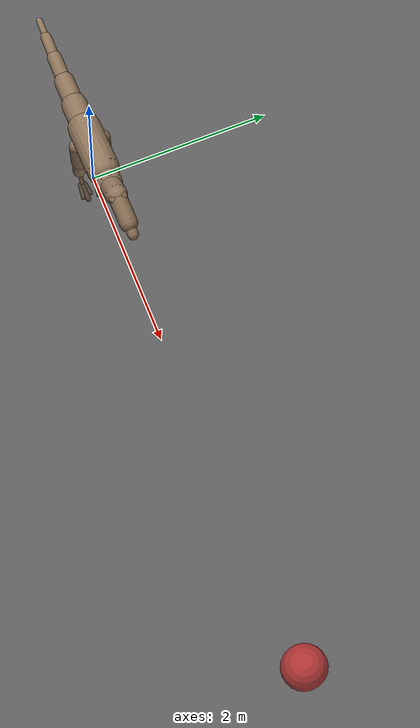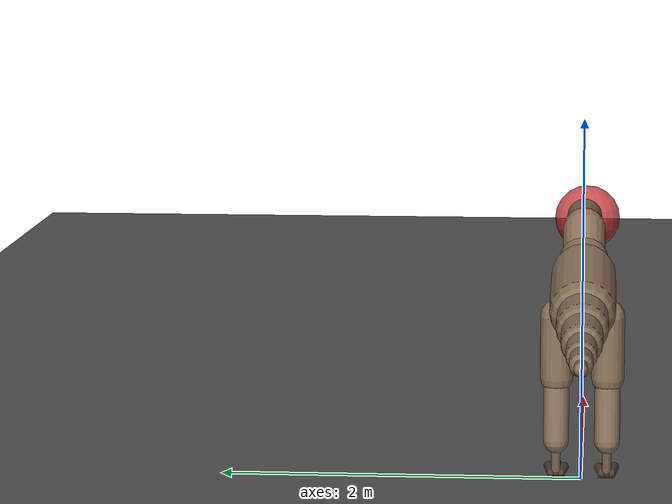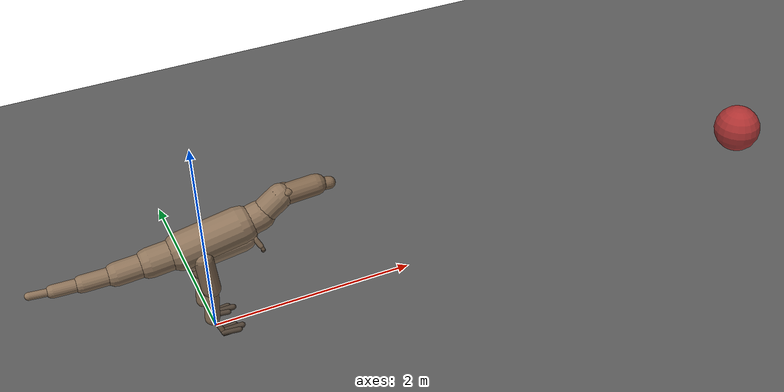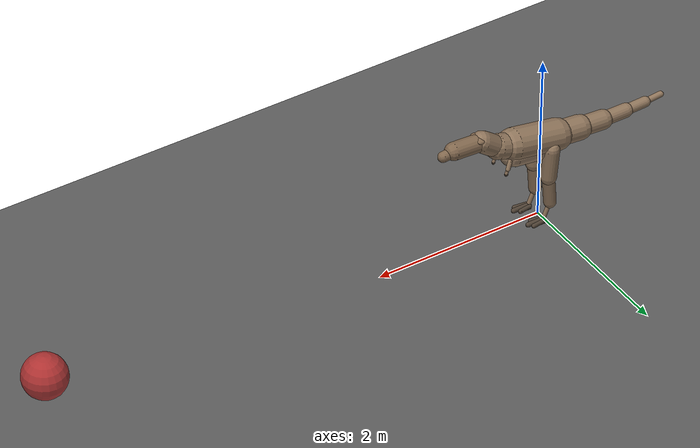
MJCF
<mujoco model="tyrannosaurus_rex">
  <compiler angle="degree" autolimits="true"/>

  <option timestep="0.002" gravity="0 0 -9.81" integrator="implicitfast">
    <flag warmstart="enable"/>
  </option>

  <default>
    <joint limited="true" damping="8.0" armature="0.05"/>
    <geom contype="1" conaffinity="1" friction="1.2 0.005 0.0001"/>
    <motor ctrllimited="true" ctrlrange="-1 1"/>

    <default class="leg_joint">
      <joint damping="45.0" armature="0.1" stiffness="40.0"/>
    </default>

    <!-- Tail joints: very stiff, acts as heavy counterbalance to skull -->
    <!-- Stiffness 80 + damping 30 prevents unactuated distal segments from sagging -->
    <default class="tail_joint">
      <joint damping="30.0" stiffness="80.0" armature="0.05" range="-12 12"/>
    </default>

  </default>

  <asset>
    <texture type="skybox" builtin="gradient" rgb1="0.6 0.8 1.0" rgb2="0.2 0.4 0.6"
             width="256" height="256"/>
    <texture name="grid" type="2d" builtin="checker" rgb1="0.4 0.4 0.4" rgb2="0.3 0.3 0.3"
             width="512" height="512"/>
    <material name="grid_mat" texture="grid" texrepeat="8 8" reflectance="0.1"/>
    <material name="body_mat" rgba="0.55 0.45 0.35 1"/>
    <material name="belly_mat" rgba="0.6 0.5 0.4 1"/>
    <material name="head_mat" rgba="0.5 0.4 0.3 1"/>
    <material name="claw_mat" rgba="0.3 0.25 0.2 1"/>
    <material name="tooth_mat" rgba="0.9 0.88 0.8 1"/>
  </asset>

  <worldbody>
    <!-- Ground plane -->
    <geom name="floor" type="plane" size="100 100 0.1" material="grid_mat"
          conaffinity="1" contype="1"/>

    <!-- Prey target (mocap body) -->
    <body name="prey" mocap="true" pos="6 0 0.5">
      <geom name="prey_geom" type="sphere" size="0.25" rgba="0.8 0.2 0.2 0.8"
            contype="2" conaffinity="2"/>
    </body>

    <!-- ==================== T-REX BODY ==================== -->

    <body name="pelvis" pos="0 0 0.9795">
      <freejoint name="root"/>

      <!-- Main torso: forward-leaning, angled ~30 deg from horizontal -->
      <!-- Pelvis region (rear of torso, widest part) -->
      <geom name="torso" type="capsule" fromto="-0.2 0 0  0.35 0 0.1" size="0.18"
            mass="20.0" material="body_mat"/>

      <!-- Ribcage (front of torso, narrowing toward neck) -->
      <geom name="ribcage" type="capsule" fromto="0.3 0 0.08  0.55 0 0.15" size="0.14"
            mass="10.0" material="body_mat"/>

      <!-- Belly (adds mass lower for stability) -->
      <geom name="belly" type="capsule" fromto="-0.1 0 -0.08  0.35 0 -0.02" size="0.15"
            mass="5.0" material="belly_mat"/>

      <!-- IMU sensor site (center of mass region) -->
      <site name="imu" pos="0.1 0 0.05" size="0.03"/>

      <!-- ==================== NECK + HEAD ==================== -->
      <!-- Short, thick, muscular neck angling up to massive skull -->

      <body name="neck" pos="0.55 0 0.15">
        <joint name="neck_pitch" type="hinge" axis="0 1 0" range="-30 40"
               damping="12.0" armature="0.05"/>
        <joint name="neck_yaw" type="hinge" axis="0 0 1" range="-20 20"
               damping="10.0" armature="0.03"/>
        <geom name="neck_geom" type="capsule" fromto="0 0 0  0.2 0 0.15" size="0.12"
              mass="5.0" material="body_mat" contype="0" conaffinity="0"/>

        <!-- Skull: massive, elongated, deep -->
        <body name="skull" pos="0.2 0 0.15">
          <joint name="head_pitch" type="hinge" axis="0 1 0" range="-25 35"
                 damping="8.0" armature="0.03"/>
          <!-- Upper skull -->
          <geom name="skull_upper" type="capsule" fromto="0 0 0  0.35 0 0.02" size="0.1"
                mass="6.0" material="head_mat"/>
          <!-- Brow ridges (T-Rex had prominent brow horns) -->
          <geom name="brow_ridge" type="ellipsoid" pos="0.05 0 0.06" size="0.08 0.1 0.04"
                mass="0.5" material="head_mat" contype="0" conaffinity="0"/>
          <!-- Snout (narrowing toward front) -->
          <geom name="snout" type="capsule" fromto="0.3 0 0.02  0.48 0 0" size="0.06"
                mass="2.0" material="head_mat"/>

          <!-- Head tip sensor for bite detection -->
          <site name="head_tip" pos="0.48 0 0" size="0.02"/>

          <!-- Head contact geom for bite detection (at snout tip) -->
          <geom name="head_bite" type="box" pos="0.46 0 -0.02" size="0.06 0.05 0.04"
                mass="0.2" rgba="0 0 0 0" contype="2" conaffinity="2"/>
        </body>
      </body>

      <!-- ==================== TAIL ==================== -->
      <!-- 5 segments, heavy, muscular - primary counterbalance to skull -->
      <!-- Starts thick at pelvis, tapers to tip -->

      <body name="tail_1" pos="-0.2 0 0">
        <joint name="tail_1_pitch" class="tail_joint" type="hinge" axis="0 1 0"/>
        <joint name="tail_1_yaw" class="tail_joint" type="hinge" axis="0 0 1" range="-8 8"/>
        <geom name="tail_1_geom" type="capsule" fromto="0 0 0  -0.3 0 -0.03" size="0.14"
              mass="6.0" material="body_mat"/>

        <body name="tail_2" pos="-0.3 0 -0.03">
          <joint name="tail_2_pitch" class="tail_joint" type="hinge" axis="0 1 0"/>
          <geom name="tail_2_geom" type="capsule" fromto="0 0 0  -0.3 0 -0.02" size="0.11"
                mass="4.5" material="body_mat"/>

          <body name="tail_3" pos="-0.3 0 -0.02">
            <joint name="tail_3_pitch" class="tail_joint" type="hinge" axis="0 1 0"/>
            <geom name="tail_3_geom" type="capsule" fromto="0 0 0  -0.3 0 0" size="0.08"
                  mass="3.0" material="body_mat"/>

            <body name="tail_4" pos="-0.3 0 0">
              <geom name="tail_4_geom" type="capsule" fromto="0 0 0  -0.25 0 0.01" size="0.06"
                    mass="1.5" material="body_mat"/>

              <body name="tail_5" pos="-0.25 0 0.01">
                <geom name="tail_5_geom" type="capsule" fromto="0 0 0  -0.2 0 0.02" size="0.035"
                      mass="0.6" material="body_mat"/>
                <site name="tail_tip" pos="-0.2 0 0.02" size="0.015"/>
              </body>
            </body>
          </body>
        </body>
      </body>

      <!-- ==================== RIGHT LEG ==================== -->
      <!-- Massive, powerful digitigrade legs -->
      <!-- Hip -> Thigh -> Tibia -> Metatarsus -> Toes -->

      <body name="r_thigh" pos="-0.05 -0.14 -0.05">
        <!-- Hip: 2 DOF -->
        <joint name="r_hip_pitch" class="leg_joint" type="hinge" axis="0 1 0"
               range="-67.6 62.4" ref="15" springref="-2.6"/>
        <joint name="r_hip_roll" class="leg_joint" type="hinge" axis="1 0 0"
               range="-25 25" springref="0"/>
        <geom name="r_thigh_geom" type="capsule" fromto="0 0 0  0.03 0 -0.35" size="0.09"
              mass="5.0" material="body_mat"/>

        <body name="r_tibia" pos="0.03 0 -0.35">
          <!-- Knee: 1 DOF -->
          <joint name="r_knee" class="leg_joint" type="hinge" axis="0 1 0"
                 range="-74.8 25.2" ref="-60" springref="-24.8"/>
          <geom name="r_tibia_geom" type="capsule" fromto="0 0 0  -0.03 0 -0.35" size="0.07"
                mass="3.5" material="body_mat"/>

          <body name="r_metatarsus" pos="-0.03 0 -0.35">
            <!-- Ankle: 1 DOF (digitigrade stance) -->
            <joint name="r_ankle" class="leg_joint" type="hinge" axis="0 1 0"
                   range="32.4 132.4" ref="94.5" springref="76.9"/>
            <geom name="r_metatarsus_geom" type="capsule" fromto="0 0 0  0.08 0 -0.2" size="0.025"
                  mass="1.2" material="body_mat"/>
            <!-- Thin plantar pad: gives the three digits one load-bearing
                 fore-aft surface instead of balancing on the rear
                 metatarsus endpoint. -->
            <geom name="r_plantar_geom" type="box" pos="0.14 0 -0.218"
                  size="0.07 0.045 0.01" mass="0.02" material="claw_mat"/>
            <site name="r_foot" type="box" pos="0.16 0 -0.218"
                  size="0.15 0.07 0.02" group="4"/>

            <!-- Toes: 3 separate forward-facing digits (anatomically correct) -->
            <!-- Digit 2 (medial, shortest) -->
            <body name="r_toe_d2" pos="0.08 0.025 -0.203">
              <joint name="r_toe_d2_joint" class="leg_joint" type="hinge" axis="0 1 0"
                     range="-25 50" ref="12.5" springref="12.5" damping="15.0"/>
              <geom name="r_toe_d2_geom" type="capsule" fromto="0 0 0  0.13 0.02 0" size="0.025"
                    mass="0.16" material="claw_mat"/>
              <site name="r_toe_d2_site" type="box" pos="0.065 0.01 0"
                    size="0.10 0.05 0.04" group="4"/>
            </body>

            <!-- Digit 3 (central, longest — primary weight-bearing) -->
            <body name="r_toe_d3" pos="0.08 0 -0.2">
              <joint name="r_toe_d3_joint" class="leg_joint" type="hinge" axis="0 1 0"
                     range="-25 50" ref="12.5" springref="12.5" damping="15.0"/>
              <geom name="r_toe_d3_geom" type="capsule" fromto="0 0 0  0.19 0 0" size="0.028"
                    mass="0.22" material="claw_mat"/>
              <site name="r_toe_d3_site" type="box" pos="0.095 0 0"
                    size="0.13 0.05 0.04" group="4"/>
            </body>

            <!-- Digit 4 (lateral, medium) -->
            <body name="r_toe_d4" pos="0.08 -0.025 -0.203">
              <joint name="r_toe_d4_joint" class="leg_joint" type="hinge" axis="0 1 0"
                     range="-25 50" ref="12.5" springref="12.5" damping="15.0"/>
              <geom name="r_toe_d4_geom" type="capsule" fromto="0 0 0  0.15 -0.02 0" size="0.025"
                    mass="0.16" material="claw_mat"/>
              <site name="r_toe_d4_site" type="box" pos="0.075 -0.01 0"
                    size="0.11 0.05 0.04" group="4"/>
            </body>
          </body>
        </body>
      </body>

      <!-- ==================== LEFT LEG ==================== -->

      <body name="l_thigh" pos="-0.05 0.14 -0.05">
        <joint name="l_hip_pitch" class="leg_joint" type="hinge" axis="0 1 0"
               range="-67.6 62.4" ref="15" springref="-2.6"/>
        <joint name="l_hip_roll" class="leg_joint" type="hinge" axis="1 0 0"
               range="-25 25" springref="0"/>
        <geom name="l_thigh_geom" type="capsule" fromto="0 0 0  0.03 0 -0.35" size="0.09"
              mass="5.0" material="body_mat"/>

        <body name="l_tibia" pos="0.03 0 -0.35">
          <joint name="l_knee" class="leg_joint" type="hinge" axis="0 1 0"
                 range="-74.8 25.2" ref="-60" springref="-24.8"/>
          <geom name="l_tibia_geom" type="capsule" fromto="0 0 0  -0.03 0 -0.35" size="0.07"
                mass="3.5" material="body_mat"/>

          <body name="l_metatarsus" pos="-0.03 0 -0.35">
            <joint name="l_ankle" class="leg_joint" type="hinge" axis="0 1 0"
                   range="32.4 132.4" ref="94.5" springref="76.9"/>
            <geom name="l_metatarsus_geom" type="capsule" fromto="0 0 0  0.08 0 -0.2" size="0.025"
                  mass="1.2" material="body_mat"/>
            <geom name="l_plantar_geom" type="box" pos="0.14 0 -0.218"
                  size="0.07 0.045 0.01" mass="0.02" material="claw_mat"/>
            <site name="l_foot" type="box" pos="0.16 0 -0.218"
                  size="0.15 0.07 0.02" group="4"/>

            <!-- Toes: 3 separate forward-facing digits (anatomically correct) -->
            <!-- Digit 2 (medial, shortest) -->
            <body name="l_toe_d2" pos="0.08 -0.025 -0.203">
              <joint name="l_toe_d2_joint" class="leg_joint" type="hinge" axis="0 1 0"
                     range="-25 50" ref="12.5" springref="12.5" damping="15.0"/>
              <geom name="l_toe_d2_geom" type="capsule" fromto="0 0 0  0.13 -0.02 0" size="0.025"
                    mass="0.16" material="claw_mat"/>
              <site name="l_toe_d2_site" type="box" pos="0.065 -0.01 0"
                    size="0.10 0.05 0.04" group="4"/>
            </body>

            <!-- Digit 3 (central, longest — primary weight-bearing) -->
            <body name="l_toe_d3" pos="0.08 0 -0.2">
              <joint name="l_toe_d3_joint" class="leg_joint" type="hinge" axis="0 1 0"
                     range="-25 50" ref="12.5" springref="12.5" damping="15.0"/>
              <geom name="l_toe_d3_geom" type="capsule" fromto="0 0 0  0.19 0 0" size="0.028"
                    mass="0.22" material="claw_mat"/>
              <site name="l_toe_d3_site" type="box" pos="0.095 0 0"
                    size="0.13 0.05 0.04" group="4"/>
            </body>

            <!-- Digit 4 (lateral, medium) -->
            <body name="l_toe_d4" pos="0.08 0.025 -0.203">
              <joint name="l_toe_d4_joint" class="leg_joint" type="hinge" axis="0 1 0"
                     range="-25 50" ref="12.5" springref="12.5" damping="15.0"/>
              <geom name="l_toe_d4_geom" type="capsule" fromto="0 0 0  0.15 0.02 0" size="0.025"
                    mass="0.16" material="claw_mat"/>
              <site name="l_toe_d4_site" type="box" pos="0.075 0.01 0"
                    size="0.11 0.05 0.04" group="4"/>
            </body>
          </body>
        </body>
      </body>

      <!-- ==================== FORELIMBS (vestigial) ==================== -->

      <body name="r_arm" pos="0.45 -0.1 -0.02">
        <geom name="r_upper_arm_geom" type="capsule" fromto="0 0 0  0.04 -0.02 -0.08" size="0.025"
              mass="0.3" material="body_mat"/>
        <body name="r_forearm" pos="0.04 -0.02 -0.08">
          <geom name="r_forearm_geom" type="capsule" fromto="0 0 0  0.02 0 -0.05" size="0.018"
                mass="0.1" material="body_mat"/>
          <!-- Two-fingered hand -->
          <geom name="r_hand" type="sphere" pos="0.02 0 -0.06" size="0.02"
                mass="0.05" material="claw_mat"/>
        </body>
      </body>

      <body name="l_arm" pos="0.45 0.1 -0.02">
        <geom name="l_upper_arm_geom" type="capsule" fromto="0 0 0  0.04 0.02 -0.08" size="0.025"
              mass="0.3" material="body_mat"/>
        <body name="l_forearm" pos="0.04 0.02 -0.08">
          <geom name="l_forearm_geom" type="capsule" fromto="0 0 0  0.02 0 -0.05" size="0.018"
                mass="0.1" material="body_mat"/>
          <geom name="l_hand" type="sphere" pos="0.02 0 -0.06" size="0.02"
                mass="0.05" material="claw_mat"/>
        </body>
      </body>

    </body> <!-- end pelvis -->
  </worldbody>

  <!-- ==================== ACTUATORS ==================== -->
  <!-- Position actuators for locomotion -->

  <actuator>
    <!-- NOTE: ctrlrange must be in radians — the compiler angle="degree" setting
         does NOT convert actuator attributes, only joint attributes. -->

    <!-- Head/neck control -->
    <position name="neck_pitch_act" joint="neck_pitch" kp="200" forcerange="-160 160" ctrlrange="-0.5236 0.6981"/>
    <position name="neck_yaw_act" joint="neck_yaw" kp="100" forcerange="-80 80" ctrlrange="-0.3491 0.3491"/>
    <position name="head_pitch_act" joint="head_pitch" kp="80" forcerange="-65 65" ctrlrange="-0.4363 0.6109"/>

    <!-- Right leg -->
    <position name="r_hip_pitch_act" joint="r_hip_pitch" kp="1200" forcerange="-1800 1800" ctrlrange="-1.17984 1.08908"/>
    <position name="r_hip_roll_act" joint="r_hip_roll" kp="600" forcerange="-480 480" ctrlrange="-0.4363 0.4363"/>
    <position name="r_knee_act" joint="r_knee" kp="1500" forcerange="-2250 2250" ctrlrange="-1.30550 0.43982"/>
    <position name="r_ankle_act" joint="r_ankle" kp="900" forcerange="-1350 1350" ctrlrange="0.56549 2.31081"/>

    <!-- Left leg -->
    <position name="l_hip_pitch_act" joint="l_hip_pitch" kp="1200" forcerange="-1800 1800" ctrlrange="-1.17984 1.08908"/>
    <position name="l_hip_roll_act" joint="l_hip_roll" kp="600" forcerange="-480 480" ctrlrange="-0.4363 0.4363"/>
    <position name="l_knee_act" joint="l_knee" kp="1500" forcerange="-2250 2250" ctrlrange="-1.30550 0.43982"/>
    <position name="l_ankle_act" joint="l_ankle" kp="900" forcerange="-1350 1350" ctrlrange="0.56549 2.31081"/>

    <!-- Tail actuators for active balance control (counterbalance to massive skull) -->
    <position name="tail_1_pitch_act" joint="tail_1_pitch" kp="100" forcerange="-80 80" ctrlrange="-0.2094 0.2094"/>
    <position name="tail_1_yaw_act" joint="tail_1_yaw" kp="80" forcerange="-65 65" ctrlrange="-0.1396 0.1396"/>
    <position name="tail_2_pitch_act" joint="tail_2_pitch" kp="80" forcerange="-65 65" ctrlrange="-0.2094 0.2094"/>
    <position name="tail_3_pitch_act" joint="tail_3_pitch" kp="60" forcerange="-50 50" ctrlrange="-0.2094 0.2094"/>
  </actuator>

  <!-- ==================== SENSORS ==================== -->

  <sensor>
    <!-- IMU-like sensors on pelvis -->
    <gyro name="pelvis_gyro" site="imu"/>
    <accelerometer name="pelvis_accel" site="imu"/>
    <framequat name="pelvis_orientation" objtype="site" objname="imu"/>

    <touch name="r_foot_touch" site="r_foot"/>
    <touch name="l_foot_touch" site="l_foot"/>

    <!-- Head position for bite detection -->
    <framepos name="head_tip_pos" objtype="site" objname="head_tip"/>

    <!-- Tail tip for stability monitoring -->
    <framepos name="tail_tip_pos" objtype="site" objname="tail_tip"/>
    <velocimeter name="tail_tip_linvel" site="tail_tip"/>
    <gyro name="tail_tip_angvel" site="tail_tip"/>

    <touch name="r_toe_d2_touch" site="r_toe_d2_site"/>
    <touch name="r_toe_d3_touch" site="r_toe_d3_site"/>
    <touch name="r_toe_d4_touch" site="r_toe_d4_site"/>
    <touch name="l_toe_d2_touch" site="l_toe_d2_site"/>
    <touch name="l_toe_d3_touch" site="l_toe_d3_site"/>
    <touch name="l_toe_d4_touch" site="l_toe_d4_site"/>
  </sensor>

  <!-- ==================== CONTACT EXCLUSIONS ==================== -->

  <contact>
    <!-- Neck/head chain -->
    <exclude body1="pelvis" body2="neck"/>
    <exclude body1="neck" body2="skull"/>

    <!-- Tail chain -->
    <exclude body1="pelvis" body2="tail_1"/>
    <exclude body1="tail_1" body2="tail_2"/>
    <exclude body1="tail_2" body2="tail_3"/>
    <exclude body1="tail_3" body2="tail_4"/>
    <exclude body1="tail_4" body2="tail_5"/>

    <!-- Thigh-torso -->
    <exclude body1="pelvis" body2="r_thigh"/>
    <exclude body1="pelvis" body2="l_thigh"/>

    <exclude body1="tail_1" body2="r_thigh"/>
    <exclude body1="tail_1" body2="l_thigh"/>

    <!-- Arm-torso -->
    <exclude body1="pelvis" body2="r_arm"/>
    <exclude body1="pelvis" body2="l_arm"/>

    <exclude body1="r_toe_d2" body2="r_toe_d3"/>
    <exclude body1="r_toe_d3" body2="r_toe_d4"/>
    <exclude body1="r_toe_d2" body2="r_toe_d4"/>
    <exclude body1="l_toe_d2" body2="l_toe_d3"/>
    <exclude body1="l_toe_d3" body2="l_toe_d4"/>
    <exclude body1="l_toe_d2" body2="l_toe_d4"/>
  </contact>

  <!-- ==================== KEYFRAMES ==================== -->

  <keyframe>
    <key name="home"
         qpos="0 0 0.9266 1 0 0 0
               0 0 0 0 0 0 0
               -0.045379 0 -0.432842 1.342158 0.218166 0.218166 0.218166
               -0.045379 0 -0.432842 1.342158 0.218166 0.218166 0.218166"
         ctrl="0 0 0
               -0.04538 0 -0.43284 1.43815
               -0.04538 0 -0.43284 1.43815
               0 0 0 0"/>
  </keyframe>

</mujoco>
